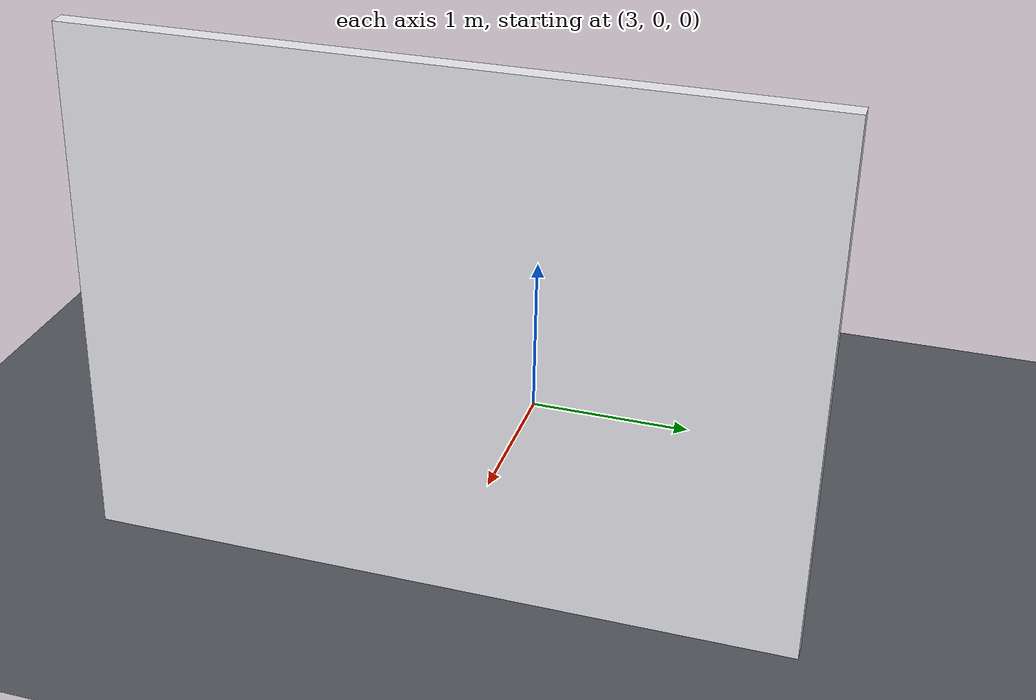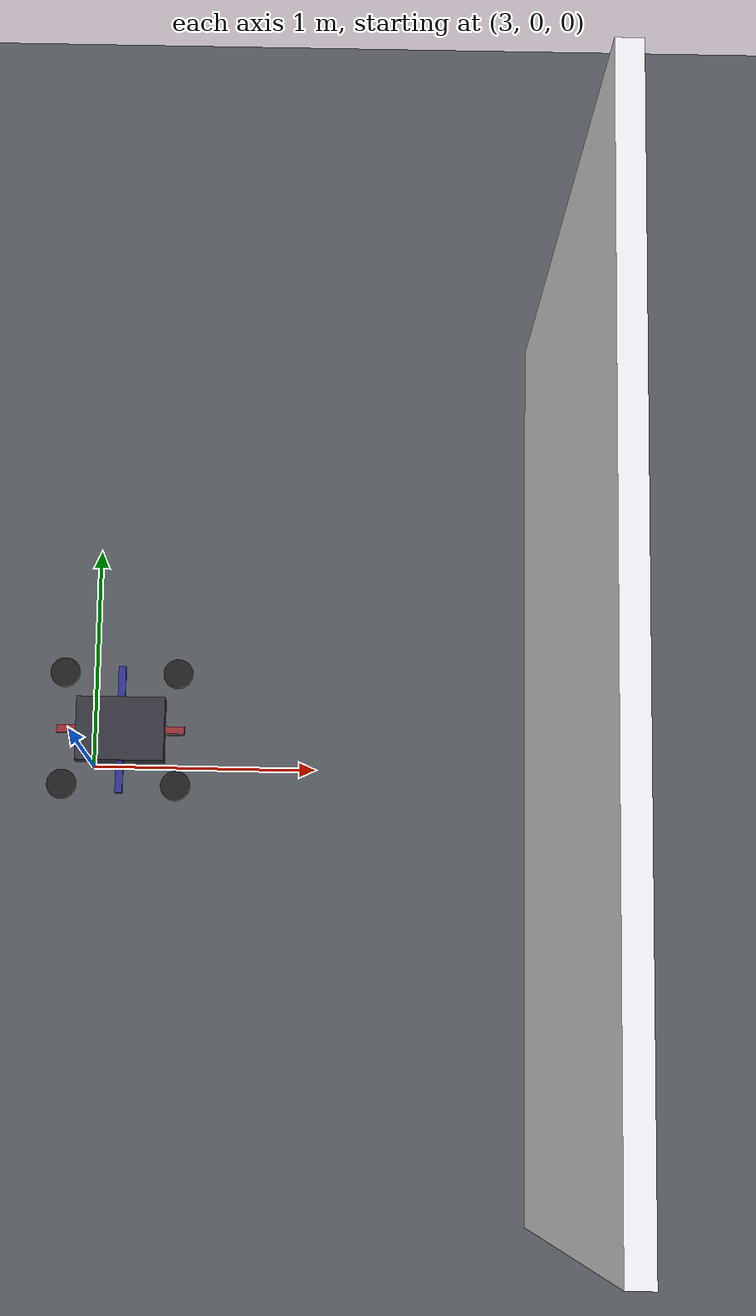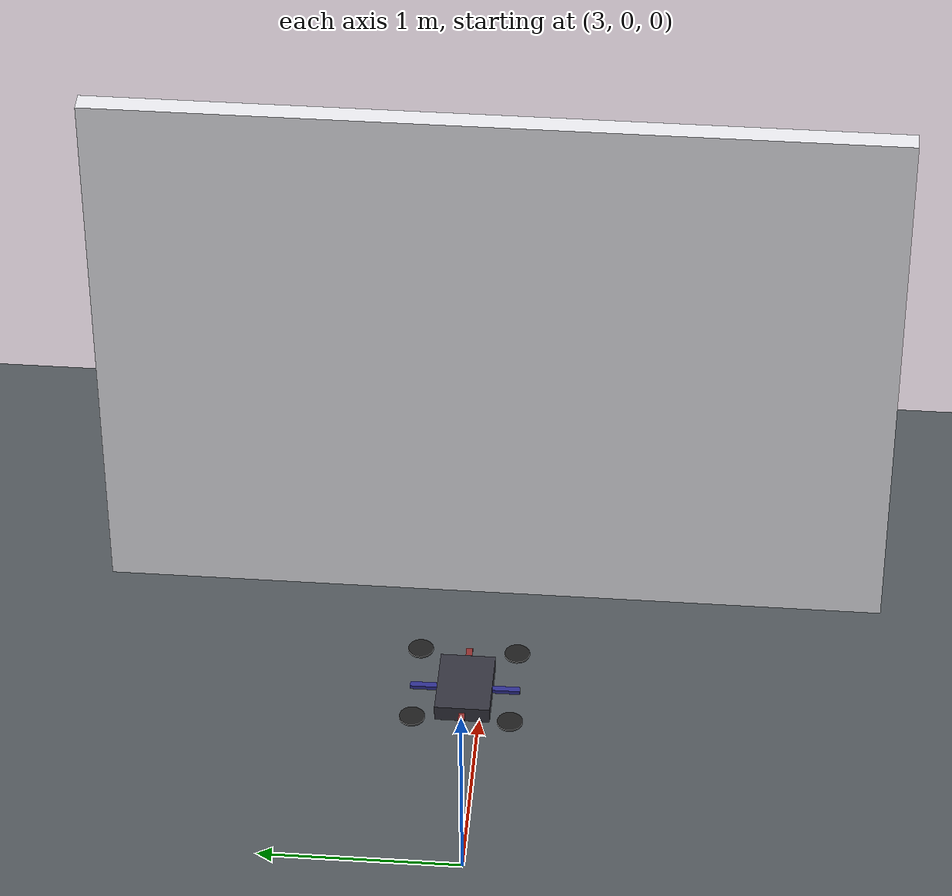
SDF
<?xml version="1.0" ?>
<sdf version="1.9">
  <world name="uav_depth_target">
    <gravity>0 0 -9.8</gravity>

    <plugin filename="ignition-gazebo-physics-system" name="ignition::gazebo::systems::Physics"/>
    <plugin filename="ignition-gazebo-user-commands-system" name="ignition::gazebo::systems::UserCommands"/>
    <plugin filename="ignition-gazebo-scene-broadcaster-system" name="ignition::gazebo::systems::SceneBroadcaster"/>
    <plugin filename="ignition-gazebo-sensors-system" name="ignition::gazebo::systems::Sensors">
      <render_engine>ogre2</render_engine>
    </plugin>

    <light type="directional" name="sun">
      <cast_shadows>true</cast_shadows>
      <pose>0 0 10 0 0 0</pose>
      <diffuse>0.9 0.9 0.9 1.0</diffuse>
      <specular>0.2 0.2 0.2 1.0</specular>
      <direction>-0.35 0.15 -0.92</direction>
    </light>

    <model name="ground_plane">
      <static>true</static>
      <link name="link">
        <collision name="collision">
          <geometry>
            <plane>
              <normal>0 0 1</normal>
              <size>30 30</size>
            </plane>
          </geometry>
        </collision>
        <visual name="visual">
          <geometry>
            <plane>
              <normal>0 0 1</normal>
              <size>30 30</size>
            </plane>
          </geometry>
          <material>
            <ambient>0.28 0.30 0.32 1</ambient>
            <diffuse>0.32 0.34 0.36 1</diffuse>
          </material>
        </visual>
      </link>
    </model>

    <model name="depth_target_panel">
      <static>true</static>
      <pose>5.0 0.0 1.5 0 0 0</pose>
      <link name="link">
        <collision name="collision">
          <geometry>
            <box>
              <size>0.10 4.00 3.00</size>
            </box>
          </geometry>
        </collision>
        <visual name="visual">
          <geometry>
            <box>
              <size>0.10 4.00 3.00</size>
            </box>
          </geometry>
          <material>
            <ambient>0.82 0.82 0.84 1</ambient>
            <diffuse>0.92 0.92 0.94 1</diffuse>
          </material>
        </visual>
      </link>
    </model>

    <include>
      <uri>model://uav_d435i_platform</uri>
      <name>uav_main</name>
      <pose>3.21 0.0 1.0 0 0 0</pose>
    </include>
  </world>
</sdf>

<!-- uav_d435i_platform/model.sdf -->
<sdf version="1.9">
  <model name="uav_d435i_platform">
    <static>true</static>
    <self_collide>false</self_collide>

    <link name="base_link">
      <gravity>false</gravity>
      <velocity_decay>
        <linear>0.2</linear>
        <angular>0.2</angular>
      </velocity_decay>
      <inertial>
        <mass>1.4</mass>
        <inertia>
          <ixx>0.03</ixx>
          <ixy>0.0</ixy>
          <ixz>0.0</ixz>
          <iyy>0.03</iyy>
          <iyz>0.0</iyz>
          <izz>0.05</izz>
        </inertia>
      </inertial>

      <visual name="body_visual">
        <geometry>
          <box>
            <size>0.36 0.26 0.08</size>
          </box>
        </geometry>
        <material>
          <ambient>0.16 0.16 0.18 1</ambient>
          <diffuse>0.20 0.20 0.24 1</diffuse>
        </material>
      </visual>

      <visual name="front_camera_housing">
        <pose>0.19 0.0 -0.02 0 0 0</pose>
        <geometry>
          <box>
            <size>0.12 0.03 0.03</size>
          </box>
        </geometry>
        <material>
          <ambient>0.06 0.06 0.07 1</ambient>
          <diffuse>0.10 0.10 0.12 1</diffuse>
        </material>
      </visual>

      <visual name="arm_x">
        <geometry>
          <box>
            <size>0.52 0.03 0.02</size>
          </box>
        </geometry>
        <material>
          <ambient>0.42 0.14 0.14 1</ambient>
          <diffuse>0.56 0.18 0.18 1</diffuse>
        </material>
      </visual>

      <visual name="arm_y">
        <geometry>
          <box>
            <size>0.03 0.52 0.02</size>
          </box>
        </geometry>
        <material>
          <ambient>0.14 0.14 0.42 1</ambient>
          <diffuse>0.18 0.18 0.56 1</diffuse>
        </material>
      </visual>

      <visual name="rotor_fl">
        <pose>0.23 0.23 0.02 0 0 0</pose>
        <geometry>
          <cylinder>
            <radius>0.06</radius>
            <length>0.01</length>
          </cylinder>
        </geometry>
        <material>
          <ambient>0.08 0.08 0.08 1</ambient>
          <diffuse>0.12 0.12 0.12 1</diffuse>
        </material>
      </visual>

      <visual name="rotor_fr">
        <pose>0.23 -0.23 0.02 0 0 0</pose>
        <geometry>
          <cylinder>
            <radius>0.06</radius>
            <length>0.01</length>
          </cylinder>
        </geometry>
        <material>
          <ambient>0.08 0.08 0.08 1</ambient>
          <diffuse>0.12 0.12 0.12 1</diffuse>
        </material>
      </visual>

      <visual name="rotor_rl">
        <pose>-0.23 0.23 0.02 0 0 0</pose>
        <geometry>
          <cylinder>
            <radius>0.06</radius>
            <length>0.01</length>
          </cylinder>
        </geometry>
        <material>
          <ambient>0.08 0.08 0.08 1</ambient>
          <diffuse>0.12 0.12 0.12 1</diffuse>
        </material>
      </visual>

      <visual name="rotor_rr">
        <pose>-0.23 -0.23 0.02 0 0 0</pose>
        <geometry>
          <cylinder>
            <radius>0.06</radius>
            <length>0.01</length>
          </cylinder>
        </geometry>
        <material>
          <ambient>0.08 0.08 0.08 1</ambient>
          <diffuse>0.12 0.12 0.12 1</diffuse>
        </material>
      </visual>

      <sensor name="d435i_color" type="camera">
        <pose>0.30 0.0 0.05 0 0 0</pose>
        <camera>
          <horizontal_fov>1.211</horizontal_fov>
          <image>
            <width>640</width>
            <height>480</height>
            <format>R8G8B8</format>
          </image>
          <clip>
            <near>0.1</near>
            <far>10.0</far>
          </clip>
        </camera>
        <always_on>true</always_on>
        <update_rate>30</update_rate>
        <visualize>false</visualize>
        <topic>rgbd_camera_color</topic>
        <enable_metrics>false</enable_metrics>
      </sensor>

      <sensor name="d435i_depth" type="depth_camera">
        <pose>0.30 0.0 0.05 0 0 0</pose>
        <camera>
          <horizontal_fov>1.518</horizontal_fov>
          <image>
            <width>640</width>
            <height>480</height>
            <format>R_FLOAT32</format>
          </image>
          <clip>
            <near>0.1</near>
            <far>10.0</far>
          </clip>
          <depth_camera>
            <output>depths</output>
          </depth_camera>
          <noise>
            <type>gaussian</type>
            <mean>0.0</mean>
            <stddev>0.010</stddev>
          </noise>
        </camera>
        <always_on>true</always_on>
        <update_rate>30</update_rate>
        <visualize>false</visualize>
        <topic>rgbd_camera_depth</topic>
        <enable_metrics>false</enable_metrics>
      </sensor>

      <sensor name="d435i_imu" type="imu">
        <pose>0.02 0 0 0 0 0</pose>
        <always_on>true</always_on>
        <update_rate>200</update_rate>
        <visualize>false</visualize>
        <topic>camera/imu</topic>
        <enable_metrics>true</enable_metrics>
        <imu>
          <angular_velocity>
            <x>
              <noise type="gaussian">
                <mean>0.0</mean>
                <stddev>0.002</stddev>
              </noise>
            </x>
            <y>
              <noise type="gaussian">
                <mean>0.0</mean>
                <stddev>0.002</stddev>
              </noise>
            </y>
            <z>
              <noise type="gaussian">
                <mean>0.0</mean>
                <stddev>0.002</stddev>
              </noise>
            </z>
          </angular_velocity>
          <linear_acceleration>
            <x>
              <noise type="gaussian">
                <mean>0.0</mean>
                <stddev>0.02</stddev>
              </noise>
            </x>
            <y>
              <noise type="gaussian">
                <mean>0.0</mean>
                <stddev>0.02</stddev>
              </noise>
            </y>
            <z>
              <noise type="gaussian">
                <mean>0.0</mean>
                <stddev>0.02</stddev>
              </noise>
            </z>
          </linear_acceleration>
        </imu>
      </sensor>

      <sensor name="uav_lidar" type="gpu_lidar">
        <pose>0.18 0 0.06 0 0 0</pose>
        <always_on>true</always_on>
        <update_rate>10</update_rate>
        <visualize>false</visualize>
        <topic>uav_lidar/scan</topic>
        <ray>
          <scan>
            <horizontal>
              <samples>720</samples>
              <resolution>1</resolution>
              <min_angle>-3.1415926</min_angle>
              <max_angle>3.1415926</max_angle>
            </horizontal>
            <vertical>
              <samples>60</samples>
              <resolution>1</resolution>
              <min_angle>-0.122173</min_angle>
              <max_angle>0.907571</max_angle>
            </vertical>
          </scan>
          <range>
            <min>0.1</min>
            <max>70.0</max>
            <resolution>0.01</resolution>
          </range>
        </ray>
      </sensor>
    </link>
  </model>
</sdf>
